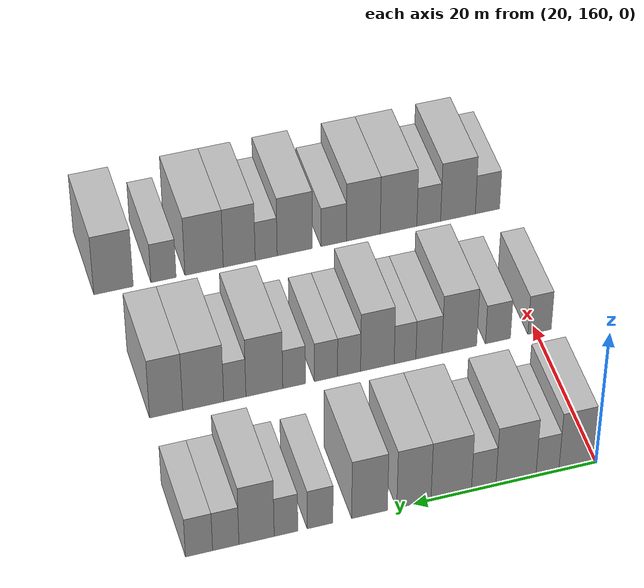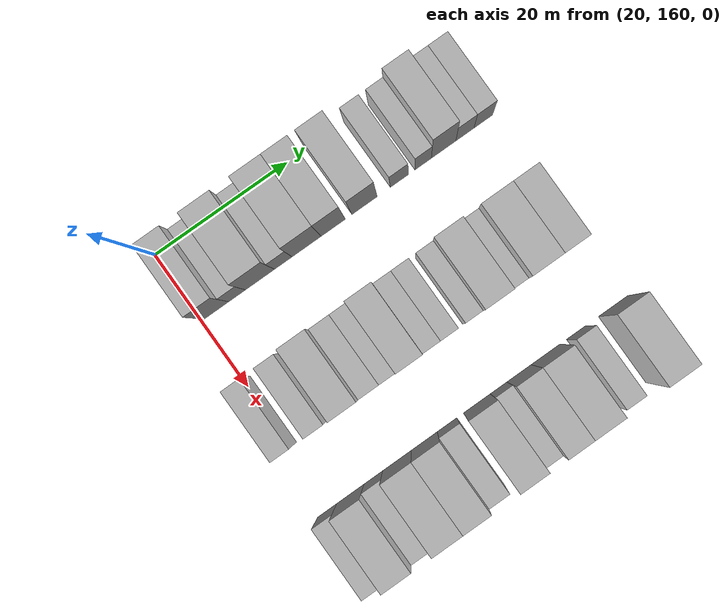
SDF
<sdf version="1.6">
 <world name="default">
  <model name="building_129">
   <static>1</static>
   <pose>25.0000 162.2864 0 0.000000 0.000000 0.000000</pose>
   <link name="link">
    <pose>0 0 4.50 0 0 0</pose>
    <collision name="collision"><geometry><box><size>10.0000 3.7345 9.0000</size></box></geometry></collision>
    <visual name="visual">
     <cast_shadows>0</cast_shadows>
     <geometry><box><size>10.0000 3.7345 9.0000</size></box></geometry>
     <material>
      <script>
       <uri>model://HANNAS_wall/materials/scripts</uri>
       <uri>model://HANNAS_wall/materials/textures</uri>
       <name>vrc/HANNAS_wall</name>
      </script>
     </material>
    </visual>
   </link>
  </model>
  <model name="building_130">
   <static>1</static>
   <pose>25.0000 165.4136 0 0.000000 0.000000 0.000000</pose>
   <link name="link">
    <pose>0 0 3.00 0 0 0</pose>
    <collision name="collision"><geometry><box><size>10.0000 2.5200 6.0000</size></box></geometry></collision>
    <visual name="visual">
     <cast_shadows>0</cast_shadows>
     <geometry><box><size>10.0000 2.5200 6.0000</size></box></geometry>
     <material>
      <script>
       <uri>model://HANNAS_wall/materials/scripts</uri>
       <uri>model://HANNAS_wall/materials/textures</uri>
       <name>vrc/HANNAS_wall</name>
      </script>
     </material>
    </visual>
   </link>
  </model>
  <model name="building_131">
   <static>1</static>
   <pose>25.0000 168.8662 0 0.000000 0.000000 0.000000</pose>
   <link name="link">
    <pose>0 0 4.50 0 0 0</pose>
    <collision name="collision"><geometry><box><size>10.0000 4.3852 9.0000</size></box></geometry></collision>
    <visual name="visual">
     <cast_shadows>0</cast_shadows>
     <geometry><box><size>10.0000 4.3852 9.0000</size></box></geometry>
     <material>
      <script>
       <uri>model://HANNAS_wall/materials/scripts</uri>
       <uri>model://HANNAS_wall/materials/textures</uri>
       <name>vrc/HANNAS_wall</name>
      </script>
     </material>
    </visual>
   </link>
  </model>
  <model name="building_132">
   <static>1</static>
   <pose>25.0000 172.3889 0 0.000000 0.000000 0.000000</pose>
   <link name="link">
    <pose>0 0 3.00 0 0 0</pose>
    <collision name="collision"><geometry><box><size>10.0000 2.6602 6.0000</size></box></geometry></collision>
    <visual name="visual">
     <cast_shadows>0</cast_shadows>
     <geometry><box><size>10.0000 2.6602 6.0000</size></box></geometry>
     <material>
      <script>
       <uri>model://HANNAS_wall/materials/scripts</uri>
       <uri>model://HANNAS_wall/materials/textures</uri>
       <name>vrc/HANNAS_wall</name>
      </script>
     </material>
    </visual>
   </link>
  </model>
  <model name="building_133">
   <static>1</static>
   <pose>25.0000 175.9090 0 0.000000 0.000000 0.000000</pose>
   <link name="link">
    <pose>0 0 4.50 0 0 0</pose>
    <collision name="collision"><geometry><box><size>10.0000 4.3799 9.0000</size></box></geometry></collision>
    <visual name="visual">
     <cast_shadows>0</cast_shadows>
     <geometry><box><size>10.0000 4.3799 9.0000</size></box></geometry>
     <material>
      <script>
       <uri>model://HANNAS_wall/materials/scripts</uri>
       <uri>model://HANNAS_wall/materials/textures</uri>
       <name>vrc/HANNAS_wall</name>
      </script>
     </material>
    </visual>
   </link>
  </model>
  <model name="building_134">
   <static>1</static>
   <pose>25.0000 179.9458 0 0.000000 0.000000 0.000000</pose>
   <link name="link">
    <pose>0 0 4.50 0 0 0</pose>
    <collision name="collision"><geometry><box><size>10.0000 3.6938 9.0000</size></box></geometry></collision>
    <visual name="visual">
     <cast_shadows>0</cast_shadows>
     <geometry><box><size>10.0000 3.6938 9.0000</size></box></geometry>
     <material>
      <script>
       <uri>model://HANNAS_wall/materials/scripts</uri>
       <uri>model://HANNAS_wall/materials/textures</uri>
       <name>vrc/HANNAS_wall</name>
      </script>
     </material>
    </visual>
   </link>
  </model>
  <model name="building_135">
   <static>1</static>
   <pose>25.0000 184.7124 0 0.000000 0.000000 0.000000</pose>
   <link name="link">
    <pose>0 0 4.50 0 0 0</pose>
    <collision name="collision"><geometry><box><size>10.0000 3.8392 9.0000</size></box></geometry></collision>
    <visual name="visual">
     <cast_shadows>0</cast_shadows>
     <geometry><box><size>10.0000 3.8392 9.0000</size></box></geometry>
     <material>
      <script>
       <uri>model://HANNAS_wall/materials/scripts</uri>
       <uri>model://HANNAS_wall/materials/textures</uri>
       <name>vrc/HANNAS_wall</name>
      </script>
     </material>
    </visual>
   </link>
  </model>
  <model name="building_136">
   <static>1</static>
   <pose>25.0000 190.0033 0 0.000000 0.000000 0.000000</pose>
   <link name="link">
    <pose>0 0 3.00 0 0 0</pose>
    <collision name="collision"><geometry><box><size>10.0000 2.7427 6.0000</size></box></geometry></collision>
    <visual name="visual">
     <cast_shadows>0</cast_shadows>
     <geometry><box><size>10.0000 2.7427 6.0000</size></box></geometry>
     <material>
      <script>
       <uri>model://HANNAS_wall/materials/scripts</uri>
       <uri>model://HANNAS_wall/materials/textures</uri>
       <name>vrc/HANNAS_wall</name>
      </script>
     </material>
    </visual>
   </link>
  </model>
  <model name="building_137">
   <static>1</static>
   <pose>25.0000 193.6274 0 0.000000 0.000000 0.000000</pose>
   <link name="link">
    <pose>0 0 3.00 0 0 0</pose>
    <collision name="collision"><geometry><box><size>10.0000 2.5055 6.0000</size></box></geometry></collision>
    <visual name="visual">
     <cast_shadows>0</cast_shadows>
     <geometry><box><size>10.0000 2.5055 6.0000</size></box></geometry>
     <material>
      <script>
       <uri>model://HANNAS_wall/materials/scripts</uri>
       <uri>model://HANNAS_wall/materials/textures</uri>
       <name>vrc/HANNAS_wall</name>
      </script>
     </material>
    </visual>
   </link>
  </model>
  <model name="building_138">
   <static>1</static>
   <pose>25.0000 196.7386 0 0.000000 0.000000 0.000000</pose>
   <link name="link">
    <pose>0 0 4.50 0 0 0</pose>
    <collision name="collision"><geometry><box><size>10.0000 3.7170 9.0000</size></box></geometry></collision>
    <visual name="visual">
     <cast_shadows>0</cast_shadows>
     <geometry><box><size>10.0000 3.7170 9.0000</size></box></geometry>
     <material>
      <script>
       <uri>model://HANNAS_wall/materials/scripts</uri>
       <uri>model://HANNAS_wall/materials/textures</uri>
       <name>vrc/HANNAS_wall</name>
      </script>
     </material>
    </visual>
   </link>
  </model>
  <model name="building_139">
   <static>1</static>
   <pose>25.0000 199.9825 0 0.000000 0.000000 0.000000</pose>
   <link name="link">
    <pose>0 0 3.00 0 0 0</pose>
    <collision name="collision"><geometry><box><size>10.0000 2.7708 6.0000</size></box></geometry></collision>
    <visual name="visual">
     <cast_shadows>0</cast_shadows>
     <geometry><box><size>10.0000 2.7708 6.0000</size></box></geometry>
     <material>
      <script>
       <uri>model://HANNAS_wall/materials/scripts</uri>
       <uri>model://HANNAS_wall/materials/textures</uri>
       <name>vrc/HANNAS_wall</name>
      </script>
     </material>
    </visual>
   </link>
  </model>
  <model name="building_140">
   <static>1</static>
   <pose>25.0000 202.7918 0 0.000000 0.000000 0.000000</pose>
   <link name="link">
    <pose>0 0 3.00 0 0 0</pose>
    <collision name="collision"><geometry><box><size>10.0000 2.8478 6.0000</size></box></geometry></collision>
    <visual name="visual">
     <cast_shadows>0</cast_shadows>
     <geometry><box><size>10.0000 2.8478 6.0000</size></box></geometry>
     <material>
      <script>
       <uri>model://HANNAS_wall/materials/scripts</uri>
       <uri>model://HANNAS_wall/materials/textures</uri>
       <name>vrc/HANNAS_wall</name>
      </script>
     </material>
    </visual>
   </link>
  </model>
  <model name="building_293">
   <static>1</static>
   <pose>44.0000 159.6439 0 0.000000 0.000000 0.000000</pose>
   <link name="link">
    <pose>0 0 3.00 0 0 0</pose>
    <collision name="collision"><geometry><box><size>10.0000 2.6679 6.0000</size></box></geometry></collision>
    <visual name="visual">
     <cast_shadows>0</cast_shadows>
     <geometry><box><size>10.0000 2.6679 6.0000</size></box></geometry>
     <material>
      <script>
       <uri>model://HANNAS_wall/materials/scripts</uri>
       <uri>model://HANNAS_wall/materials/textures</uri>
       <name>vrc/HANNAS_wall</name>
      </script>
     </material>
    </visual>
   </link>
  </model>
  <model name="building_294">
   <static>1</static>
   <pose>44.0000 164.4047 0 0.000000 0.000000 0.000000</pose>
   <link name="link">
    <pose>0 0 3.00 0 0 0</pose>
    <collision name="collision"><geometry><box><size>10.0000 2.8537 6.0000</size></box></geometry></collision>
    <visual name="visual">
     <cast_shadows>0</cast_shadows>
     <geometry><box><size>10.0000 2.8537 6.0000</size></box></geometry>
     <material>
      <script>
       <uri>model://HANNAS_wall/materials/scripts</uri>
       <uri>model://HANNAS_wall/materials/textures</uri>
       <name>vrc/HANNAS_wall</name>
      </script>
     </material>
    </visual>
   </link>
  </model>
  <model name="building_295">
   <static>1</static>
   <pose>44.0000 168.8029 0 0.000000 0.000000 0.000000</pose>
   <link name="link">
    <pose>0 0 4.50 0 0 0</pose>
    <collision name="collision"><geometry><box><size>10.0000 3.9427 9.0000</size></box></geometry></collision>
    <visual name="visual">
     <cast_shadows>0</cast_shadows>
     <geometry><box><size>10.0000 3.9427 9.0000</size></box></geometry>
     <material>
      <script>
       <uri>model://HANNAS_wall/materials/scripts</uri>
       <uri>model://HANNAS_wall/materials/textures</uri>
       <name>vrc/HANNAS_wall</name>
      </script>
     </material>
    </visual>
   </link>
  </model>
  <model name="building_296">
   <static>1</static>
   <pose>44.0000 172.2439 0 0.000000 0.000000 0.000000</pose>
   <link name="link">
    <pose>0 0 3.00 0 0 0</pose>
    <collision name="collision"><geometry><box><size>10.0000 2.9393 6.0000</size></box></geometry></collision>
    <visual name="visual">
     <cast_shadows>0</cast_shadows>
     <geometry><box><size>10.0000 2.9393 6.0000</size></box></geometry>
     <material>
      <script>
       <uri>model://HANNAS_wall/materials/scripts</uri>
       <uri>model://HANNAS_wall/materials/textures</uri>
       <name>vrc/HANNAS_wall</name>
      </script>
     </material>
    </visual>
   </link>
  </model>
  <model name="building_297">
   <static>1</static>
   <pose>44.0000 174.9356 0 0.000000 0.000000 0.000000</pose>
   <link name="link">
    <pose>0 0 3.00 0 0 0</pose>
    <collision name="collision"><geometry><box><size>10.0000 2.4442 6.0000</size></box></geometry></collision>
    <visual name="visual">
     <cast_shadows>0</cast_shadows>
     <geometry><box><size>10.0000 2.4442 6.0000</size></box></geometry>
     <material>
      <script>
       <uri>model://HANNAS_wall/materials/scripts</uri>
       <uri>model://HANNAS_wall/materials/textures</uri>
       <name>vrc/HANNAS_wall</name>
      </script>
     </material>
    </visual>
   </link>
  </model>
  <model name="building_298">
   <static>1</static>
   <pose>44.0000 178.0419 0 0.000000 0.000000 0.000000</pose>
   <link name="link">
    <pose>0 0 4.50 0 0 0</pose>
    <collision name="collision"><geometry><box><size>10.0000 3.7684 9.0000</size></box></geometry></collision>
    <visual name="visual">
     <cast_shadows>0</cast_shadows>
     <geometry><box><size>10.0000 3.7684 9.0000</size></box></geometry>
     <material>
      <script>
       <uri>model://HANNAS_wall/materials/scripts</uri>
       <uri>model://HANNAS_wall/materials/textures</uri>
       <name>vrc/HANNAS_wall</name>
      </script>
     </material>
    </visual>
   </link>
  </model>
  <model name="building_299">
   <static>1</static>
   <pose>44.0000 181.2138 0 0.000000 0.000000 0.000000</pose>
   <link name="link">
    <pose>0 0 3.00 0 0 0</pose>
    <collision name="collision"><geometry><box><size>10.0000 2.5755 6.0000</size></box></geometry></collision>
    <visual name="visual">
     <cast_shadows>0</cast_shadows>
     <geometry><box><size>10.0000 2.5755 6.0000</size></box></geometry>
     <material>
      <script>
       <uri>model://HANNAS_wall/materials/scripts</uri>
       <uri>model://HANNAS_wall/materials/textures</uri>
       <name>vrc/HANNAS_wall</name>
      </script>
     </material>
    </visual>
   </link>
  </model>
  <model name="building_300">
   <static>1</static>
   <pose>44.0000 183.7836 0 0.000000 0.000000 0.000000</pose>
   <link name="link">
    <pose>0 0 3.00 0 0 0</pose>
    <collision name="collision"><geometry><box><size>10.0000 2.5640 6.0000</size></box></geometry></collision>
    <visual name="visual">
     <cast_shadows>0</cast_shadows>
     <geometry><box><size>10.0000 2.5640 6.0000</size></box></geometry>
     <material>
      <script>
       <uri>model://HANNAS_wall/materials/scripts</uri>
       <uri>model://HANNAS_wall/materials/textures</uri>
       <name>vrc/HANNAS_wall</name>
      </script>
     </material>
    </visual>
   </link>
  </model>
  <model name="building_301">
   <static>1</static>
   <pose>44.0000 187.3251 0 0.000000 0.000000 0.000000</pose>
   <link name="link">
    <pose>0 0 3.00 0 0 0</pose>
    <collision name="collision"><geometry><box><size>10.0000 2.5191 6.0000</size></box></geometry></collision>
    <visual name="visual">
     <cast_shadows>0</cast_shadows>
     <geometry><box><size>10.0000 2.5191 6.0000</size></box></geometry>
     <material>
      <script>
       <uri>model://HANNAS_wall/materials/scripts</uri>
       <uri>model://HANNAS_wall/materials/textures</uri>
       <name>vrc/HANNAS_wall</name>
      </script>
     </material>
    </visual>
   </link>
  </model>
  <model name="building_302">
   <static>1</static>
   <pose>44.0000 190.6198 0 0.000000 0.000000 0.000000</pose>
   <link name="link">
    <pose>0 0 4.50 0 0 0</pose>
    <collision name="collision"><geometry><box><size>10.0000 4.0704 9.0000</size></box></geometry></collision>
    <visual name="visual">
     <cast_shadows>0</cast_shadows>
     <geometry><box><size>10.0000 4.0704 9.0000</size></box></geometry>
     <material>
      <script>
       <uri>model://HANNAS_wall/materials/scripts</uri>
       <uri>model://HANNAS_wall/materials/textures</uri>
       <name>vrc/HANNAS_wall</name>
      </script>
     </material>
    </visual>
   </link>
  </model>
  <model name="building_303">
   <static>1</static>
   <pose>44.0000 193.8757 0 0.000000 0.000000 0.000000</pose>
   <link name="link">
    <pose>0 0 3.00 0 0 0</pose>
    <collision name="collision"><geometry><box><size>10.0000 2.4413 6.0000</size></box></geometry></collision>
    <visual name="visual">
     <cast_shadows>0</cast_shadows>
     <geometry><box><size>10.0000 2.4413 6.0000</size></box></geometry>
     <material>
      <script>
       <uri>model://HANNAS_wall/materials/scripts</uri>
       <uri>model://HANNAS_wall/materials/textures</uri>
       <name>vrc/HANNAS_wall</name>
      </script>
     </material>
    </visual>
   </link>
  </model>
  <model name="building_304">
   <static>1</static>
   <pose>44.0000 197.3410 0 0.000000 0.000000 0.000000</pose>
   <link name="link">
    <pose>0 0 4.50 0 0 0</pose>
    <collision name="collision"><geometry><box><size>10.0000 4.4893 9.0000</size></box></geometry></collision>
    <visual name="visual">
     <cast_shadows>0</cast_shadows>
     <geometry><box><size>10.0000 4.4893 9.0000</size></box></geometry>
     <material>
      <script>
       <uri>model://HANNAS_wall/materials/scripts</uri>
       <uri>model://HANNAS_wall/materials/textures</uri>
       <name>vrc/HANNAS_wall</name>
      </script>
     </material>
    </visual>
   </link>
  </model>
  <model name="building_305">
   <static>1</static>
   <pose>44.0000 201.3980 0 0.000000 0.000000 0.000000</pose>
   <link name="link">
    <pose>0 0 4.50 0 0 0</pose>
    <collision name="collision"><geometry><box><size>10.0000 3.6245 9.0000</size></box></geometry></collision>
    <visual name="visual">
     <cast_shadows>0</cast_shadows>
     <geometry><box><size>10.0000 3.6245 9.0000</size></box></geometry>
     <material>
      <script>
       <uri>model://HANNAS_wall/materials/scripts</uri>
       <uri>model://HANNAS_wall/materials/textures</uri>
       <name>vrc/HANNAS_wall</name>
      </script>
     </material>
    </visual>
   </link>
  </model>
  <model name="building_472">
   <static>1</static>
   <pose>63.0000 159.2291 0 0.000000 0.000000 0.000000</pose>
   <link name="link">
    <pose>0 0 3.00 0 0 0</pose>
    <collision name="collision"><geometry><box><size>10.0000 2.8820 6.0000</size></box></geometry></collision>
    <visual name="visual">
     <cast_shadows>0</cast_shadows>
     <geometry><box><size>10.0000 2.8820 6.0000</size></box></geometry>
     <material>
      <script>
       <uri>model://HANNAS_wall/materials/scripts</uri>
       <uri>model://HANNAS_wall/materials/textures</uri>
       <name>vrc/HANNAS_wall</name>
      </script>
     </material>
    </visual>
   </link>
  </model>
  <model name="building_473">
   <static>1</static>
   <pose>63.0000 162.7259 0 0.000000 0.000000 0.000000</pose>
   <link name="link">
    <pose>0 0 4.50 0 0 0</pose>
    <collision name="collision"><geometry><box><size>10.0000 4.1115 9.0000</size></box></geometry></collision>
    <visual name="visual">
     <cast_shadows>0</cast_shadows>
     <geometry><box><size>10.0000 4.1115 9.0000</size></box></geometry>
     <material>
      <script>
       <uri>model://HANNAS_wall/materials/scripts</uri>
       <uri>model://HANNAS_wall/materials/textures</uri>
       <name>vrc/HANNAS_wall</name>
      </script>
     </material>
    </visual>
   </link>
  </model>
  <model name="building_474">
   <static>1</static>
   <pose>63.0000 166.1795 0 0.000000 0.000000 0.000000</pose>
   <link name="link">
    <pose>0 0 3.00 0 0 0</pose>
    <collision name="collision"><geometry><box><size>10.0000 2.7958 6.0000</size></box></geometry></collision>
    <visual name="visual">
     <cast_shadows>0</cast_shadows>
     <geometry><box><size>10.0000 2.7958 6.0000</size></box></geometry>
     <material>
      <script>
       <uri>model://HANNAS_wall/materials/scripts</uri>
       <uri>model://HANNAS_wall/materials/textures</uri>
       <name>vrc/HANNAS_wall</name>
      </script>
     </material>
    </visual>
   </link>
  </model>
  <model name="building_475">
   <static>1</static>
   <pose>63.0000 169.7271 0 0.000000 0.000000 0.000000</pose>
   <link name="link">
    <pose>0 0 4.50 0 0 0</pose>
    <collision name="collision"><geometry><box><size>10.0000 4.2994 9.0000</size></box></geometry></collision>
    <visual name="visual">
     <cast_shadows>0</cast_shadows>
     <geometry><box><size>10.0000 4.2994 9.0000</size></box></geometry>
     <material>
      <script>
       <uri>model://HANNAS_wall/materials/scripts</uri>
       <uri>model://HANNAS_wall/materials/textures</uri>
       <name>vrc/HANNAS_wall</name>
      </script>
     </material>
    </visual>
   </link>
  </model>
  <model name="building_476">
   <static>1</static>
   <pose>63.0000 173.8465 0 0.000000 0.000000 0.000000</pose>
   <link name="link">
    <pose>0 0 4.50 0 0 0</pose>
    <collision name="collision"><geometry><box><size>10.0000 3.9394 9.0000</size></box></geometry></collision>
    <visual name="visual">
     <cast_shadows>0</cast_shadows>
     <geometry><box><size>10.0000 3.9394 9.0000</size></box></geometry>
     <material>
      <script>
       <uri>model://HANNAS_wall/materials/scripts</uri>
       <uri>model://HANNAS_wall/materials/textures</uri>
       <name>vrc/HANNAS_wall</name>
      </script>
     </material>
    </visual>
   </link>
  </model>
  <model name="building_477">
   <static>1</static>
   <pose>63.0000 177.2989 0 0.000000 0.000000 0.000000</pose>
   <link name="link">
    <pose>0 0 3.00 0 0 0</pose>
    <collision name="collision"><geometry><box><size>10.0000 2.9654 6.0000</size></box></geometry></collision>
    <visual name="visual">
     <cast_shadows>0</cast_shadows>
     <geometry><box><size>10.0000 2.9654 6.0000</size></box></geometry>
     <material>
      <script>
       <uri>model://HANNAS_wall/materials/scripts</uri>
       <uri>model://HANNAS_wall/materials/textures</uri>
       <name>vrc/HANNAS_wall</name>
      </script>
     </material>
    </visual>
   </link>
  </model>
  <model name="building_478">
   <static>1</static>
   <pose>63.0000 181.8159 0 0.000000 0.000000 0.000000</pose>
   <link name="link">
    <pose>0 0 4.50 0 0 0</pose>
    <collision name="collision"><geometry><box><size>10.0000 4.0686 9.0000</size></box></geometry></collision>
    <visual name="visual">
     <cast_shadows>0</cast_shadows>
     <geometry><box><size>10.0000 4.0686 9.0000</size></box></geometry>
     <material>
      <script>
       <uri>model://HANNAS_wall/materials/scripts</uri>
       <uri>model://HANNAS_wall/materials/textures</uri>
       <name>vrc/HANNAS_wall</name>
      </script>
     </material>
    </visual>
   </link>
  </model>
  <model name="building_479">
   <static>1</static>
   <pose>63.0000 185.1160 0 0.000000 0.000000 0.000000</pose>
   <link name="link">
    <pose>0 0 3.00 0 0 0</pose>
    <collision name="collision"><geometry><box><size>10.0000 2.5316 6.0000</size></box></geometry></collision>
    <visual name="visual">
     <cast_shadows>0</cast_shadows>
     <geometry><box><size>10.0000 2.5316 6.0000</size></box></geometry>
     <material>
      <script>
       <uri>model://HANNAS_wall/materials/scripts</uri>
       <uri>model://HANNAS_wall/materials/textures</uri>
       <name>vrc/HANNAS_wall</name>
      </script>
     </material>
    </visual>
   </link>
  </model>
  <model name="building_480">
   <static>1</static>
   <pose>63.0000 188.2129 0 0.000000 0.000000 0.000000</pose>
   <link name="link">
    <pose>0 0 4.50 0 0 0</pose>
    <collision name="collision"><geometry><box><size>10.0000 3.6622 9.0000</size></box></geometry></collision>
    <visual name="visual">
     <cast_shadows>0</cast_shadows>
     <geometry><box><size>10.0000 3.6622 9.0000</size></box></geometry>
     <material>
      <script>
       <uri>model://HANNAS_wall/materials/scripts</uri>
       <uri>model://HANNAS_wall/materials/textures</uri>
       <name>vrc/HANNAS_wall</name>
      </script>
     </material>
    </visual>
   </link>
  </model>
  <model name="building_481">
   <static>1</static>
   <pose>63.0000 192.2374 0 0.000000 0.000000 0.000000</pose>
   <link name="link">
    <pose>0 0 4.50 0 0 0</pose>
    <collision name="collision"><geometry><box><size>10.0000 4.3869 9.0000</size></box></geometry></collision>
    <visual name="visual">
     <cast_shadows>0</cast_shadows>
     <geometry><box><size>10.0000 4.3869 9.0000</size></box></geometry>
     <material>
      <script>
       <uri>model://HANNAS_wall/materials/scripts</uri>
       <uri>model://HANNAS_wall/materials/textures</uri>
       <name>vrc/HANNAS_wall</name>
      </script>
     </material>
    </visual>
   </link>
  </model>
  <model name="building_482">
   <static>1</static>
   <pose>63.0000 196.8642 0 0.000000 0.000000 0.000000</pose>
   <link name="link">
    <pose>0 0 3.00 0 0 0</pose>
    <collision name="collision"><geometry><box><size>10.0000 2.8668 6.0000</size></box></geometry></collision>
    <visual name="visual">
     <cast_shadows>0</cast_shadows>
     <geometry><box><size>10.0000 2.8668 6.0000</size></box></geometry>
     <material>
      <script>
       <uri>model://HANNAS_wall/materials/scripts</uri>
       <uri>model://HANNAS_wall/materials/textures</uri>
       <name>vrc/HANNAS_wall</name>
      </script>
     </material>
    </visual>
   </link>
  </model>
  <model name="building_483">
   <static>1</static>
   <pose>63.0000 202.5247 0 0.000000 0.000000 0.000000</pose>
   <link name="link">
    <pose>0 0 4.50 0 0 0</pose>
    <collision name="collision"><geometry><box><size>10.0000 4.4542 9.0000</size></box></geometry></collision>
    <visual name="visual">
     <cast_shadows>0</cast_shadows>
     <geometry><box><size>10.0000 4.4542 9.0000</size></box></geometry>
     <material>
      <script>
       <uri>model://HANNAS_wall/materials/scripts</uri>
       <uri>model://HANNAS_wall/materials/textures</uri>
       <name>vrc/HANNAS_wall</name>
      </script>
     </material>
    </visual>
   </link>
  </model>
 </world>
</sdf>
